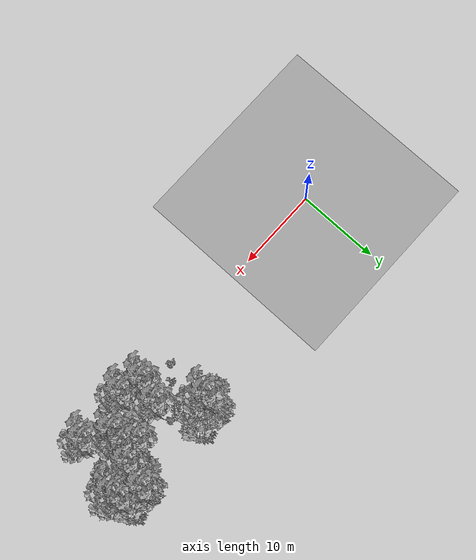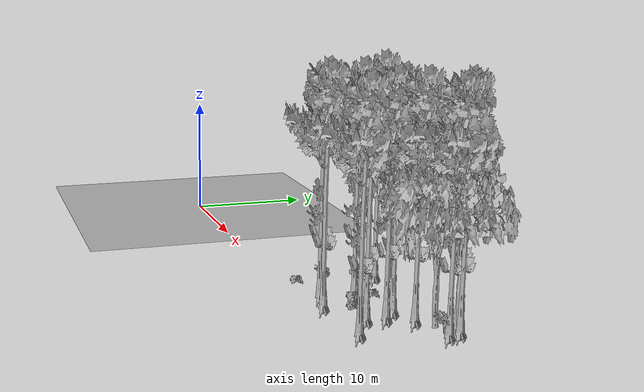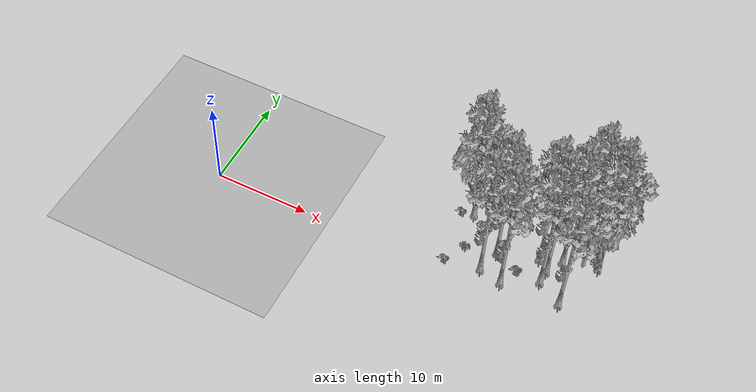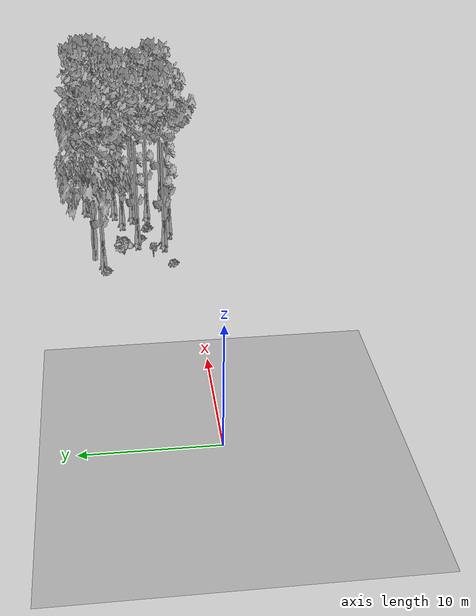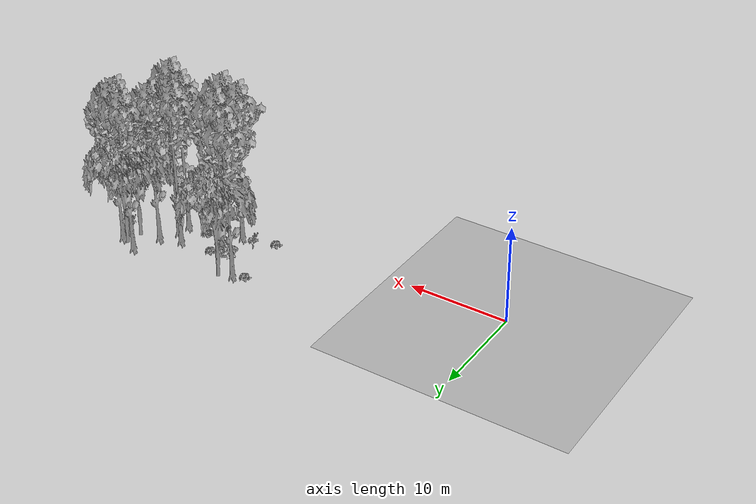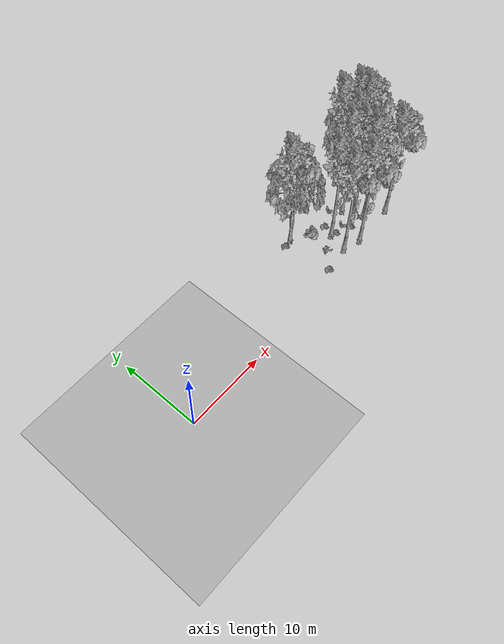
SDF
<sdf version="1.7">
 <world name="default">
  <model name="ground_plane">
   <static>1</static>
   <link name="link">
    <collision name="collision">
     <pose>-50 0 0 0 -0 0</pose>
     <geometry><plane><normal>0 0 1</normal><size>80 80</size></plane></geometry>
     <surface><contact><ode><min_depth>0.01</min_depth><max_vel>0</max_vel></ode></contact></surface>
    </collision>
    <visual name="grass">
     <cast_shadows>0</cast_shadows>
     <geometry>
      <mesh>
       <scale>0.46714285714285714 0.46714285714285714 0.1</scale>
       <uri>file://grass_plane/meshes/grass_plane.dae</uri>
      </mesh>
     </geometry>
    </visual>
   </link>
  </model>
  <model name="Tree 0">
   <static>1</static>
   <pose>36.83266492795228 7.051468206629174 0 1.57079 -0 0</pose>
   <link name="link">
    <collision name="collision">
     <geometry><mesh><scale>3.5 5 3.5</scale><uri>model://tree_2/meshes/tree_2.obj</uri></mesh></geometry>
    </collision>
    <visual name="visual">
     <geometry><mesh><scale>3.5 5 3.5</scale><uri>model://tree_2/meshes/tree_2.obj</uri></mesh></geometry>
    </visual>
   </link>
  </model>
  <model name="Tree 8">
   <static>1</static>
   <pose>38.076413633150764 8.357916476005144 0 1.57079 -0 0</pose>
   <link name="link">
    <collision name="collision">
     <geometry><mesh><scale>3.5 5 3.5</scale><uri>model://tree_9/meshes/tree_9.obj</uri></mesh></geometry>
    </collision>
    <visual name="visual">
     <geometry><mesh><scale>3.5 5 3.5</scale><uri>model://tree_9/meshes/tree_9.obj</uri></mesh></geometry>
    </visual>
   </link>
  </model>
  <model name="Tree 81">
   <static>1</static>
   <pose>36.455285714826246 1.800577297774126 0 1.57079 -0 0</pose>
   <link name="link">
    <collision name="collision">
     <geometry><mesh><scale>3.5 5 3.5</scale><uri>model://tree_9/meshes/tree_9.obj</uri></mesh></geometry>
    </collision>
    <visual name="visual">
     <geometry><mesh><scale>3.5 5 3.5</scale><uri>model://tree_9/meshes/tree_9.obj</uri></mesh></geometry>
    </visual>
   </link>
  </model>
  <model name="Tree 119">
   <static>1</static>
   <pose>25.088301491618004 7.699935171746631 0 1.57079 -0 0</pose>
   <link name="link">
    <collision name="collision">
     <geometry><mesh><scale>3.5 5 3.5</scale><uri>model://tree_9/meshes/tree_9.obj</uri></mesh></geometry>
    </collision>
    <visual name="visual">
     <geometry><mesh><scale>3.5 5 3.5</scale><uri>model://tree_9/meshes/tree_9.obj</uri></mesh></geometry>
    </visual>
   </link>
  </model>
  <model name="Tree 125">
   <static>1</static>
   <pose>32.89532286929344 5.7693344649955876 0 1.57079 -0 0</pose>
   <link name="link">
    <collision name="collision">
     <geometry><mesh><scale>3.5 5 3.5</scale><uri>model://tree_9/meshes/tree_9.obj</uri></mesh></geometry>
    </collision>
    <visual name="visual">
     <geometry><mesh><scale>3.5 5 3.5</scale><uri>model://tree_9/meshes/tree_9.obj</uri></mesh></geometry>
    </visual>
   </link>
  </model>
  <model name="Tree 155">
   <static>1</static>
   <pose>35.97706653985679 9.24970438800117 0 1.57079 -0 0</pose>
   <link name="link">
    <collision name="collision">
     <geometry><mesh><scale>3.5 5 3.5</scale><uri>model://tree_9/meshes/tree_9.obj</uri></mesh></geometry>
    </collision>
    <visual name="visual">
     <geometry><mesh><scale>3.5 5 3.5</scale><uri>model://tree_9/meshes/tree_9.obj</uri></mesh></geometry>
    </visual>
   </link>
  </model>
  <model name="Tree 190">
   <static>1</static>
   <pose>28.276204043804896 2.0022583291452776 0 1.57079 -0 0</pose>
   <link name="link">
    <collision name="collision">
     <geometry><mesh><scale>3.5 5 3.5</scale><uri>model://tree_9/meshes/tree_9.obj</uri></mesh></geometry>
    </collision>
    <visual name="visual">
     <geometry><mesh><scale>3.5 5 3.5</scale><uri>model://tree_9/meshes/tree_9.obj</uri></mesh></geometry>
    </visual>
   </link>
  </model>
  <model name="Tree 318">
   <static>1</static>
   <pose>33.95917857315122 3.316279175701908 0 1.57079 -0 0</pose>
   <link name="link">
    <collision name="collision">
     <geometry><mesh><scale>3.5 5 3.5</scale><uri>model://tree_9/meshes/tree_9.obj</uri></mesh></geometry>
    </collision>
    <visual name="visual">
     <geometry><mesh><scale>3.5 5 3.5</scale><uri>model://tree_9/meshes/tree_9.obj</uri></mesh></geometry>
    </visual>
   </link>
  </model>
  <model name="Tree 426">
   <static>1</static>
   <pose>35.02100030388682 6.4805978208538875 0 1.57079 -0 0</pose>
   <link name="link">
    <collision name="collision">
     <geometry><mesh><scale>3.5 5 3.5</scale><uri>model://tree_9/meshes/tree_9.obj</uri></mesh></geometry>
    </collision>
    <visual name="visual">
     <geometry><mesh><scale>3.5 5 3.5</scale><uri>model://tree_9/meshes/tree_9.obj</uri></mesh></geometry>
    </visual>
   </link>
  </model>
  <model name="Tree 471">
   <static>1</static>
   <pose>37.00451302433835 8.741368810098784 0 1.57079 -0 0</pose>
   <link name="link">
    <collision name="collision">
     <geometry><mesh><scale>3.5 5 3.5</scale><uri>model://tree_2/meshes/tree_2.obj</uri></mesh></geometry>
    </collision>
    <visual name="visual">
     <geometry><mesh><scale>3.5 5 3.5</scale><uri>model://tree_2/meshes/tree_2.obj</uri></mesh></geometry>
    </visual>
   </link>
  </model>
  <model name="Tree 475">
   <static>1</static>
   <pose>38.36466675225846 7.403550228523912 0 1.57079 -0 0</pose>
   <link name="link">
    <collision name="collision">
     <geometry><mesh><scale>3.5 5 3.5</scale><uri>model://tree_9/meshes/tree_9.obj</uri></mesh></geometry>
    </collision>
    <visual name="visual">
     <geometry><mesh><scale>3.5 5 3.5</scale><uri>model://tree_9/meshes/tree_9.obj</uri></mesh></geometry>
    </visual>
   </link>
  </model>
  <model name="Tree 576">
   <static>1</static>
   <pose>34.03304346435557 4.763183199811493 0 1.57079 -0 0</pose>
   <link name="link">
    <collision name="collision">
     <geometry><mesh><scale>3.5 5 3.5</scale><uri>model://tree_9/meshes/tree_9.obj</uri></mesh></geometry>
    </collision>
    <visual name="visual">
     <geometry><mesh><scale>3.5 5 3.5</scale><uri>model://tree_9/meshes/tree_9.obj</uri></mesh></geometry>
    </visual>
   </link>
  </model>
  <model name="Tree 606">
   <static>1</static>
   <pose>30.60518106079823 1.4001806150139373 0 1.57079 -0 0</pose>
   <link name="link">
    <collision name="collision">
     <geometry><mesh><scale>3.5 5 3.5</scale><uri>model://tree_9/meshes/tree_9.obj</uri></mesh></geometry>
    </collision>
    <visual name="visual">
     <geometry><mesh><scale>3.5 5 3.5</scale><uri>model://tree_9/meshes/tree_9.obj</uri></mesh></geometry>
    </visual>
   </link>
  </model>
  <model name="Tree 630">
   <static>1</static>
   <pose>26.079546330241527 8.427420381564268 0 1.57079 -0 0</pose>
   <link name="link">
    <collision name="collision">
     <geometry><mesh><scale>3.5 5 3.5</scale><uri>model://tree_2/meshes/tree_2.obj</uri></mesh></geometry>
    </collision>
    <visual name="visual">
     <geometry><mesh><scale>3.5 5 3.5</scale><uri>model://tree_2/meshes/tree_2.obj</uri></mesh></geometry>
    </visual>
   </link>
  </model>
  <model name="Tree 636">
   <static>1</static>
   <pose>28.946596028036353 4.44295951852007 0 1.57079 -0 0</pose>
   <link name="link">
    <collision name="collision">
     <geometry><mesh><scale>3.5 5 3.5</scale><uri>model://tree_9/meshes/tree_9.obj</uri></mesh></geometry>
    </collision>
    <visual name="visual">
     <geometry><mesh><scale>3.5 5 3.5</scale><uri>model://tree_9/meshes/tree_9.obj</uri></mesh></geometry>
    </visual>
   </link>
  </model>
  <model name="Bush 59">
   <static>1</static>
   <pose>38.11372349339773 7.147168965997864 0 1.57079 -0 0</pose>
   <link name="link">
    <collision name="collision">
     <geometry><mesh><scale>2 2 2</scale><uri>model://bush_5/meshes/bush_5.obj</uri></mesh></geometry>
     <surface><contact><collide_without_contact>false</collide_without_contact></contact></surface>
    </collision>
    <visual name="visual">
     <geometry><mesh><scale>2 2 2</scale><uri>model://bush_5/meshes/bush_5.obj</uri></mesh></geometry>
    </visual>
   </link>
  </model>
  <model name="Bush 94">
   <static>1</static>
   <pose>31.349513815349596 3.3502618346886237 0 1.57079 -0 0</pose>
   <link name="link">
    <collision name="collision">
     <geometry><mesh><scale>2 2 2</scale><uri>model://bush_2/meshes/bush_2.obj</uri></mesh></geometry>
     <surface><contact><collide_without_contact>false</collide_without_contact></contact></surface>
    </collision>
    <visual name="visual">
     <geometry><mesh><scale>2 2 2</scale><uri>model://bush_2/meshes/bush_2.obj</uri></mesh></geometry>
    </visual>
   </link>
  </model>
  <model name="Bush 133">
   <static>1</static>
   <pose>24.60252078666209 1.3977352729131525 0 1.57079 -0 0</pose>
   <link name="link">
    <collision name="collision">
     <geometry><mesh><scale>2 2 2</scale><uri>model://bush_2/meshes/bush_2.obj</uri></mesh></geometry>
     <surface><contact><collide_without_contact>false</collide_without_contact></contact></surface>
    </collision>
    <visual name="visual">
     <geometry><mesh><scale>2 2 2</scale><uri>model://bush_2/meshes/bush_2.obj</uri></mesh></geometry>
    </visual>
   </link>
  </model>
  <model name="Bush 235">
   <static>1</static>
   <pose>23.796777879163038 7.391335479942754 0 1.57079 -0 0</pose>
   <link name="link">
    <collision name="collision">
     <geometry><mesh><scale>2 2 2</scale><uri>model://bush_2/meshes/bush_2.obj</uri></mesh></geometry>
     <surface><contact><collide_without_contact>false</collide_without_contact></contact></surface>
    </collision>
    <visual name="visual">
     <geometry><mesh><scale>2 2 2</scale><uri>model://bush_2/meshes/bush_2.obj</uri></mesh></geometry>
    </visual>
   </link>
  </model>
  <model name="Bush 413">
   <static>1</static>
   <pose>26.838690199015474 5.760598271876283 0 1.57079 -0 0</pose>
   <link name="link">
    <collision name="collision">
     <geometry><mesh><scale>2 2 2</scale><uri>model://bush_1/meshes/bush_1.obj</uri></mesh></geometry>
     <surface><contact><collide_without_contact>false</collide_without_contact></contact></surface>
    </collision>
    <visual name="visual">
     <geometry><mesh><scale>2 2 2</scale><uri>model://bush_1/meshes/bush_1.obj</uri></mesh></geometry>
    </visual>
   </link>
  </model>
  <model name="Bush 426">
   <static>1</static>
   <pose>31.421356451025403 3.4857540700479177 0 1.57079 -0 0</pose>
   <link name="link">
    <collision name="collision">
     <geometry><mesh><scale>2 2 2</scale><uri>model://bush_2/meshes/bush_2.obj</uri></mesh></geometry>
     <surface><contact><collide_without_contact>false</collide_without_contact></contact></surface>
    </collision>
    <visual name="visual">
     <geometry><mesh><scale>2 2 2</scale><uri>model://bush_2/meshes/bush_2.obj</uri></mesh></geometry>
    </visual>
   </link>
  </model>
  <model name="Bush 511">
   <static>1</static>
   <pose>29.370558160512445 4.098562297446875 0 1.57079 -0 0</pose>
   <link name="link">
    <collision name="collision">
     <geometry><mesh><scale>2 2 2</scale><uri>model://bush_2/meshes/bush_2.obj</uri></mesh></geometry>
     <surface><contact><collide_without_contact>false</collide_without_contact></contact></surface>
    </collision>
    <visual name="visual">
     <geometry><mesh><scale>2 2 2</scale><uri>model://bush_2/meshes/bush_2.obj</uri></mesh></geometry>
    </visual>
   </link>
  </model>
  <model name="Bush 513">
   <static>1</static>
   <pose>26.124016841294292 3.1619637183131672 0 1.57079 -0 0</pose>
   <link name="link">
    <collision name="collision">
     <geometry><mesh><scale>2 2 2</scale><uri>model://bush_5/meshes/bush_5.obj</uri></mesh></geometry>
     <surface><contact><collide_without_contact>false</collide_without_contact></contact></surface>
    </collision>
    <visual name="visual">
     <geometry><mesh><scale>2 2 2</scale><uri>model://bush_5/meshes/bush_5.obj</uri></mesh></geometry>
    </visual>
   </link>
  </model>
  <model name="Bush 587">
   <static>1</static>
   <pose>29.25654258180542 5.715239526135562 0 1.57079 -0 0</pose>
   <link name="link">
    <collision name="collision">
     <geometry><mesh><scale>2 2 2</scale><uri>model://bush_2/meshes/bush_2.obj</uri></mesh></geometry>
     <surface><contact><collide_without_contact>false</collide_without_contact></contact></surface>
    </collision>
    <visual name="visual">
     <geometry><mesh><scale>2 2 2</scale><uri>model://bush_2/meshes/bush_2.obj</uri></mesh></geometry>
    </visual>
   </link>
  </model>
 </world>
</sdf>
